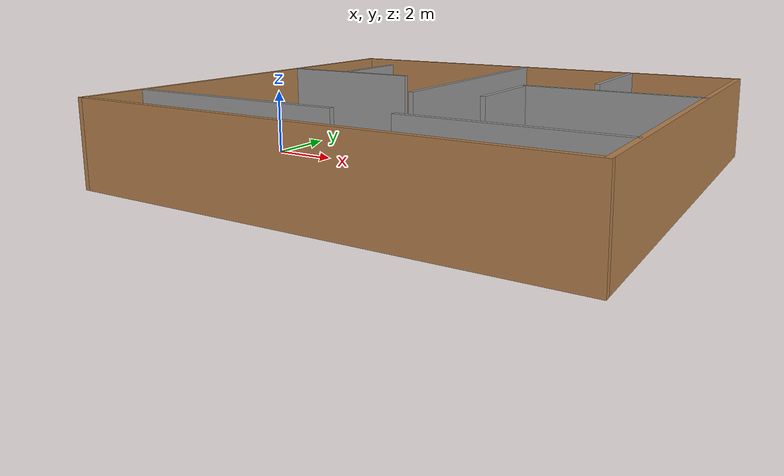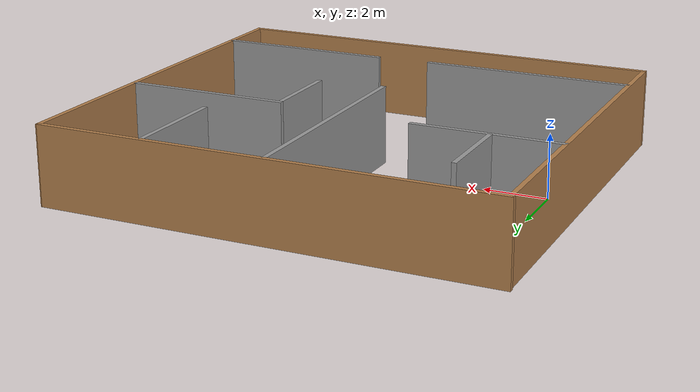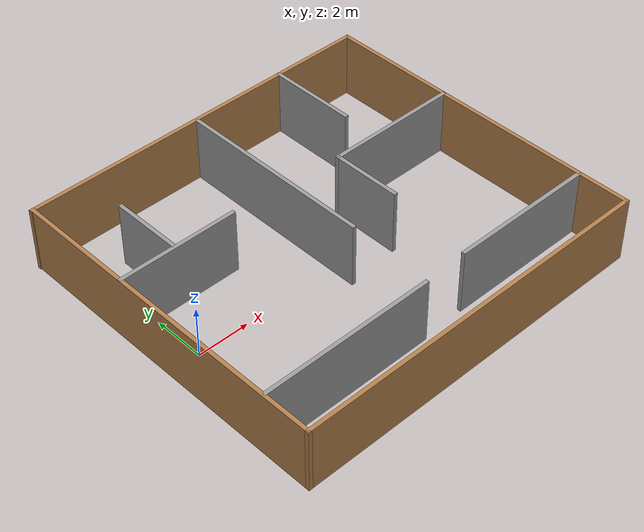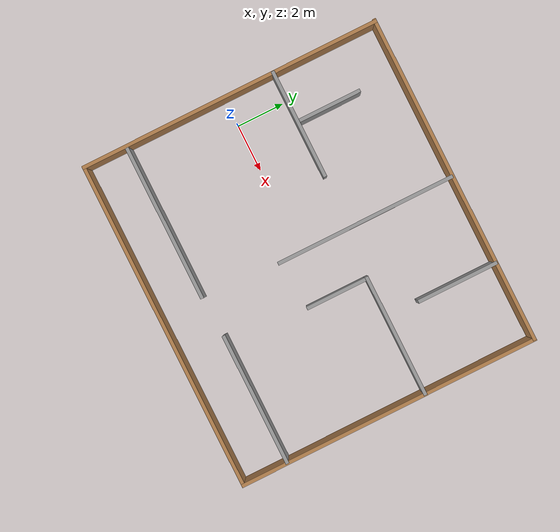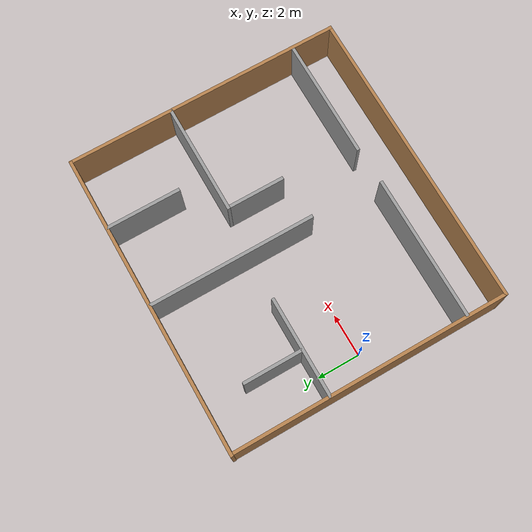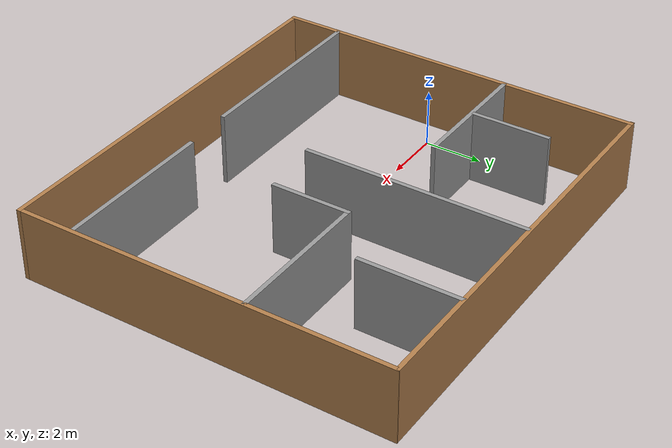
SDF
<?xml version='1.0'?>
<sdf version='1.7'>
  <model name='maze2'>
    <pose>5.9072 0.260865 0 0 -0 0</pose>
    <link name='Wall_11'>
      <collision name='Wall_11_Collision'>
        <geometry>
          <box>
            <size>5.67497 0.15 2.5</size>
          </box>
        </geometry>
        <pose>0 0 1.25 0 -0 0</pose>
      </collision>
      <visual name='Wall_11_Visual'>
        <pose>0 0 1.25 0 -0 0</pose>
        <geometry>
          <box>
            <size>5.67497 0.15 2.5</size>
          </box>
        </geometry>
        <material>
          <script>
            <uri>file://media/materials/scripts/gazebo.material</uri>
            <name>Gazebo/Grey</name>
          </script>
          <ambient>1 1 1 1</ambient>
        </material>
        <meta>
          <layer>0</layer>
        </meta>
      </visual>
      <pose>4.24317 -4.50396 0 0 -0 -0.000637</pose>
    </link>
    <link name='Wall_13'>
      <collision name='Wall_13_Collision'>
        <geometry>
          <box>
            <size>7.75 0.15 2.5</size>
          </box>
        </geometry>
        <pose>0 0 1.25 0 -0 0</pose>
      </collision>
      <visual name='Wall_13_Visual'>
        <pose>0 0 1.25 0 -0 0</pose>
        <geometry>
          <box>
            <size>7.75 0.15 2.5</size>
          </box>
        </geometry>
        <material>
          <script>
            <uri>file://media/materials/scripts/gazebo.material</uri>
            <name>Gazebo/Grey</name>
          </script>
          <ambient>1 1 1 1</ambient>
        </material>
        <meta>
          <layer>0</layer>
        </meta>
      </visual>
      <pose>-0.170756 2.58239 0 0 -0 -1.5708</pose>
    </link>
    <link name='Wall_15'>
      <collision name='Wall_15_Collision'>
        <geometry>
          <box>
            <size>4.67308 0.15 2.5</size>
          </box>
        </geometry>
        <pose>0 0 1.25 0 -0 0</pose>
      </collision>
      <visual name='Wall_15_Visual'>
        <pose>0 0 1.25 0 -0 0</pose>
        <geometry>
          <box>
            <size>4.67308 0.15 2.5</size>
          </box>
        </geometry>
        <material>
          <script>
            <uri>file://media/materials/scripts/gazebo.material</uri>
            <name>Gazebo/Grey</name>
          </script>
          <ambient>1 1 1 1</ambient>
        </material>
        <meta>
          <layer>0</layer>
        </meta>
      </visual>
      <pose>-4.7502 1.93284 0 0 -0 -0.000249</pose>
    </link>
    <link name='Wall_18'>
      <collision name='Wall_18_Collision'>
        <geometry>
          <box>
            <size>5.25 0.15 2.5</size>
          </box>
        </geometry>
        <pose>0 0 1.25 0 -0 0</pose>
      </collision>
      <visual name='Wall_18_Visual'>
        <pose>0 0 1.25 0 -0 0</pose>
        <geometry>
          <box>
            <size>5.25 0.15 2.5</size>
          </box>
        </geometry>
        <material>
          <script>
            <uri>file://media/materials/scripts/gazebo.material</uri>
            <name>Gazebo/Grey</name>
          </script>
          <ambient>1 1 1 1</ambient>
        </material>
        <meta>
          <layer>0</layer>
        </meta>
      </visual>
      <pose>4.48034 1.60864 0 0 -0 3.14159</pose>
    </link>
    <link name='Wall_19'>
      <collision name='Wall_19_Collision'>
        <geometry>
          <box>
            <size>2.75 0.15 2.5</size>
          </box>
        </geometry>
        <pose>0 0 1.25 0 -0 0</pose>
      </collision>
      <visual name='Wall_19_Visual'>
        <pose>0 0 1.25 0 -0 0</pose>
        <geometry>
          <box>
            <size>2.75 0.15 2.5</size>
          </box>
        </geometry>
        <material>
          <script>
            <uri>file://media/materials/scripts/gazebo.material</uri>
            <name>Gazebo/Grey</name>
          </script>
          <ambient>1 1 1 1</ambient>
        </material>
        <meta>
          <layer>0</layer>
        </meta>
      </visual>
      <pose>1.93034 0.308637 0 0 -0 -1.5708</pose>
    </link>
    <link name='Wall_2'>
      <collision name='Wall_2_Collision'>
        <geometry>
          <box>
            <size>13.0615 0.15 2.5</size>
          </box>
        </geometry>
        <pose>0 0 1.25 0 -0 0</pose>
      </collision>
      <visual name='Wall_2_Visual'>
        <pose>0 0 1.25 0 -0 0</pose>
        <geometry>
          <box>
            <size>13.0615 0.15 2.5</size>
          </box>
        </geometry>
        <material>
          <script>
            <uri>file://media/materials/scripts/gazebo.material</uri>
            <name>Gazebo/Wood</name>
          </script>
          <ambient>1 1 1 1</ambient>
        </material>
        <meta>
          <layer>0</layer>
        </meta>
      </visual>
      <pose>-7.03462 -0 0 0 -0 1.5708</pose>
    </link>
    <link name='Wall_21'>
      <collision name='Wall_21_Collision'>
        <geometry>
          <box>
            <size>3.5 0.15 2.5</size>
          </box>
        </geometry>
        <pose>0 0 1.25 0 -0 0</pose>
      </collision>
      <visual name='Wall_21_Visual'>
        <pose>0 0 1.25 0 -0 0</pose>
        <geometry>
          <box>
            <size>3.5 0.15 2.5</size>
          </box>
        </geometry>
        <material>
          <script>
            <uri>file://media/materials/scripts/gazebo.material</uri>
            <name>Gazebo/Grey</name>
          </script>
          <ambient>1 1 1 1</ambient>
        </material>
        <meta>
          <layer>0</layer>
        </meta>
      </visual>
      <pose>3.67252 4.74785 0 0 -0 -1.5708</pose>
    </link>
    <link name='Wall_23'>
      <collision name='Wall_23_Collision'>
        <geometry>
          <box>
            <size>2.75 0.15 2.5</size>
          </box>
        </geometry>
        <pose>0 0 1.25 0 -0 0</pose>
      </collision>
      <visual name='Wall_23_Visual'>
        <pose>0 0 1.25 0 -0 0</pose>
        <geometry>
          <box>
            <size>2.75 0.15 2.5</size>
          </box>
        </geometry>
        <material>
          <script>
            <uri>file://media/materials/scripts/gazebo.material</uri>
            <name>Gazebo/Grey</name>
          </script>
          <ambient>1 1 1 1</ambient>
        </material>
        <meta>
          <layer>0</layer>
        </meta>
      </visual>
      <pose>-4.8614 3.32959 0 0 -0 1.5708</pose>
    </link>
    <link name='Wall_3'>
      <collision name='Wall_3_Collision'>
        <geometry>
          <box>
            <size>14.25 0.15 2.5</size>
          </box>
        </geometry>
        <pose>0 0 1.25 0 -0 0</pose>
      </collision>
      <visual name='Wall_3_Visual'>
        <pose>0 0 1.25 0 -0 0</pose>
        <geometry>
          <box>
            <size>14.25 0.15 2.5</size>
          </box>
        </geometry>
        <material>
          <script>
            <uri>file://media/materials/scripts/gazebo.material</uri>
            <name>Gazebo/Wood</name>
          </script>
          <ambient>1 1 1 1</ambient>
        </material>
        <meta>
          <layer>0</layer>
        </meta>
      </visual>
      <pose>-0.015383 6.45576 0 0 -0 0</pose>
    </link>
    <link name='Wall_4'>
      <collision name='Wall_4_Collision'>
        <geometry>
          <box>
            <size>13.0615 0.15 2.5</size>
          </box>
        </geometry>
        <pose>0 0 1.25 0 -0 0</pose>
      </collision>
      <visual name='Wall_4_Visual'>
        <pose>0 0 1.25 0 -0 0</pose>
        <geometry>
          <box>
            <size>13.0615 0.15 2.5</size>
          </box>
        </geometry>
        <material>
          <script>
            <uri>file://media/materials/scripts/gazebo.material</uri>
            <name>Gazebo/Wood</name>
          </script>
          <ambient>1 1 1 1</ambient>
        </material>
        <meta>
          <layer>0</layer>
        </meta>
      </visual>
      <pose>7.06538 -0 0 0 -0 -1.5708</pose>
    </link>
    <link name='Wall_5'>
      <collision name='Wall_5_Collision'>
        <geometry>
          <box>
            <size>14.25 0.15 2.5</size>
          </box>
        </geometry>
        <pose>0 0 1.25 0 -0 0</pose>
      </collision>
      <visual name='Wall_5_Visual'>
        <pose>0 0 1.25 0 -0 0</pose>
        <geometry>
          <box>
            <size>14.25 0.15 2.5</size>
          </box>
        </geometry>
        <material>
          <script>
            <uri>file://media/materials/scripts/gazebo.material</uri>
            <name>Gazebo/Wood</name>
          </script>
          <ambient>1 1 1 1</ambient>
        </material>
        <meta>
          <layer>0</layer>
        </meta>
      </visual>
      <pose>0.015382 -6.45576 0 0 -0 3.14159</pose>
    </link>
    <link name='Wall_7'>
      <collision name='Wall_7_Collision'>
        <geometry>
          <box>
            <size>6.75 0.15 2.5</size>
          </box>
        </geometry>
        <pose>0 0 1.25 0 -0 0</pose>
      </collision>
      <visual name='Wall_7_Visual'>
        <pose>0 0 1.25 0 -0 0</pose>
        <geometry>
          <box>
            <size>6.75 0.15 2.5</size>
          </box>
        </geometry>
        <material>
          <script>
            <uri>file://media/materials/scripts/gazebo.material</uri>
            <name>Gazebo/Grey</name>
          </script>
          <ambient>1 1 1 1</ambient>
        </material>
        <meta>
          <layer>0</layer>
        </meta>
      </visual>
      <pose>-3.66426 -4.59129 0 0 -0 0</pose>
    </link>
    <static>1</static>
  </model>
</sdf>
